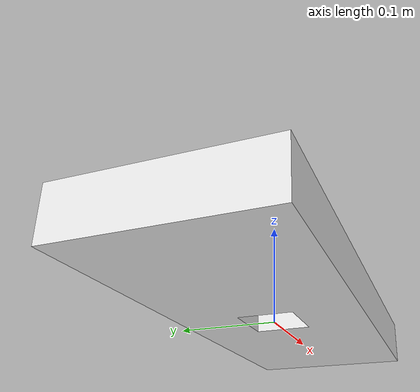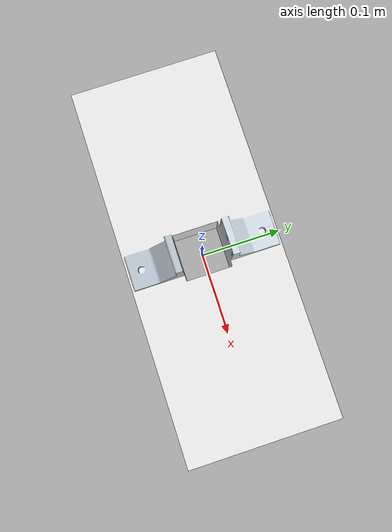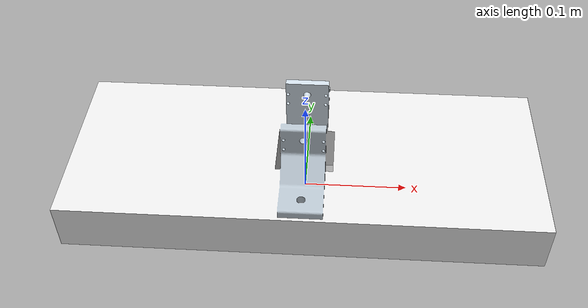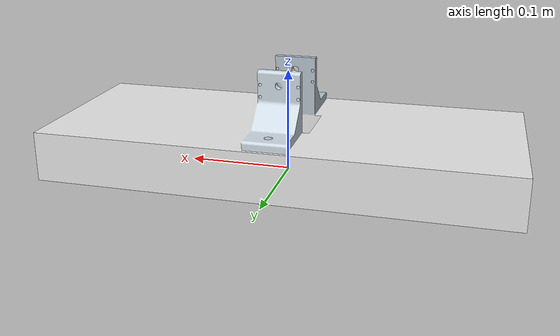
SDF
<?xml version='1.0' ?>
<sdf version='1.6'>
  <model name="base_manipulator">
    <pose>0 0 0 0 0 0</pose>
    <static>1</static>
    <link name="workbench2">
      <visual name="visual">
        <geometry>
          <mesh><uri>file://base_manipulator/mesh/base.dae</uri></mesh>
        </geometry>
      </visual>
      <collision name='collision'>
        <geometry>
          <mesh><uri>file://base_manipulator/mesh/base.dae</uri></mesh>
        </geometry>
        <surface>
          <bounce/>
          <friction>
            <ode/>
          </friction>
          <contact>
            <ode/>
          </contact>
        </surface>
      </collision>
      <gravity>1</gravity>
    </link>
  </model>
</sdf>
